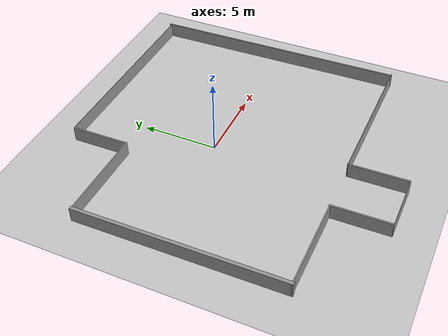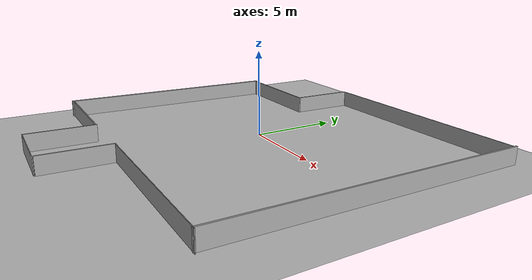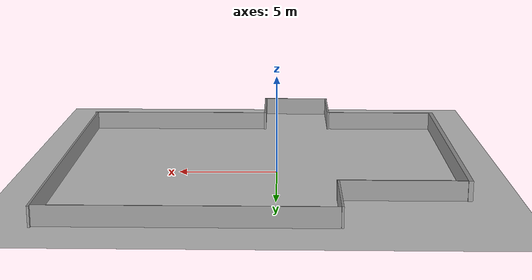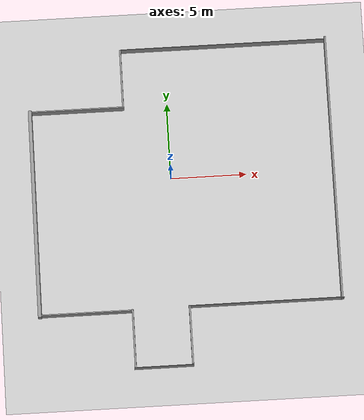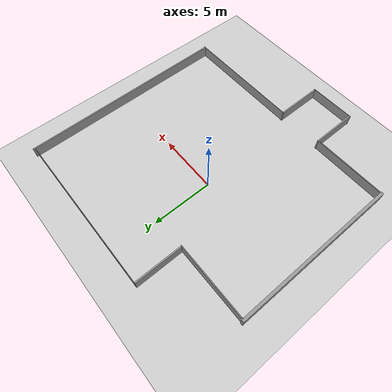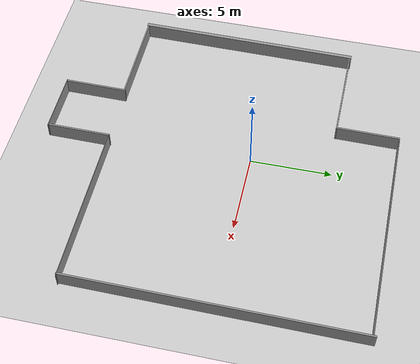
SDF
<sdf version="1.7">
 <world name="default">
  <light name="sun" type="directional">
   <pose>0 0 10 0 -0 0</pose>
   <diffuse>0.8 0.8 0.8 1</diffuse>
   <specular>0.2 0.2 0.2 1</specular>
   <attenuation>
    <range>1000</range>
    <constant>0.9</constant>
    <linear>0.01</linear>
    <quadratic>0.001</quadratic>
   </attenuation>
   <direction>-0.5 0.1 -0.9</direction>
   <spot><inner_angle>0</inner_angle><outer_angle>0</outer_angle><falloff>0</falloff></spot>
  </light>
  <model name="ground_plane">
   <static>1</static>
   <link name="link">
    <collision name="collision">
     <geometry><plane><normal>0 0 1</normal><size>100 100</size></plane></geometry>
     <surface>
      <contact><collide_bitmask>65535</collide_bitmask></contact>
      <friction><ode><mu>100</mu><mu2>50</mu2></ode></friction>
     </surface>
    </collision>
    <visual name="visual">
     <cast_shadows>0</cast_shadows>
     <geometry><plane><normal>0 0 1</normal><size>100 100</size></plane></geometry>
     <material>
      <script><uri>file://media/materials/scripts/gazebo.material</uri><name>Gazebo/Grey</name></script>
     </material>
    </visual>
   </link>
  </model>
  <gravity>0 0 -9.8</gravity>
  <magnetic_field>6e-06 2.3e-05 -4.2e-05</magnetic_field>
  <atmosphere type="adiabatic"/>
  <physics type="ode">
   <max_step_size>0.001</max_step_size>
   <real_time_factor>1</real_time_factor>
   <real_time_update_rate>1000</real_time_update_rate>
  </physics>
  <scene><ambient>0.4 0.4 0.4 1</ambient><background>0.7 0.7 0.7 1</background><shadows>1</shadows></scene>
  <spherical_coordinates>
   <surface_model>EARTH_WGS84</surface_model>
   <latitude_deg>0</latitude_deg>
   <longitude_deg>0</longitude_deg>
   <elevation>0</elevation>
   <heading_deg>0</heading_deg>
  </spherical_coordinates>
  <model name="wallstofollow">
   <link name="link_0">
    <inertial>
     <mass>0.444011</mass>
     <inertia><ixx>0.0370411</ixx><ixy>0</ixy><ixz>0</ixz><iyy>6.8047</iyy><iyz>0</iyz><izz>6.76774</izz></inertia>
    </inertial>
    <pose>7.41625 4.12053 0 0 -0 0</pose>
    <visual name="visual">
     <geometry><box><size>13.5243 0.032968 1</size></box></geometry>
     <material>
      <lighting>1</lighting>
      <script><uri>file://media/materials/scripts/gazebo.material</uri><name>Gazebo/Grey</name></script>
      <shader type="pixel"/>
     </material>
    </visual>
    <collision name="collision">
     <geometry><box><size>13.5243 0.032968 1</size></box></geometry>
     <surface>
      <friction>
       <ode><mu>1</mu><mu2>1</mu2><fdir1>0 0 0</fdir1><slip1>0</slip1><slip2>0</slip2></ode>
       <torsional>
        <coefficient>1</coefficient>
        <patch_radius>0</patch_radius>
        <surface_radius>0</surface_radius>
        <use_patch_radius>1</use_patch_radius>
        <ode><slip>0</slip></ode>
       </torsional>
      </friction>
      <bounce><restitution_coefficient>0</restitution_coefficient><threshold>1e+06</threshold></bounce>
      <contact>
       <collide_without_contact>0</collide_without_contact>
       <collide_without_contact_bitmask>1</collide_without_contact_bitmask>
       <collide_bitmask>1</collide_bitmask>
       <ode>
        <soft_cfm>0</soft_cfm>
        <soft_erp>0.2</soft_erp>
        <kp>1e+13</kp>
        <kd>1</kd>
        <max_vel>0.01</max_vel>
        <min_depth>0</min_depth>
       </ode>
       <bullet>
        <split_impulse>1</split_impulse>
        <split_impulse_penetration_threshold>-0.01</split_impulse_penetration_threshold>
        <soft_cfm>0</soft_cfm>
        <soft_erp>0.2</soft_erp>
        <kp>1e+13</kp>
        <kd>1</kd>
       </bullet>
      </contact>
     </surface>
    </collision>
   </link>
   <link name="link_0_clone">
    <inertial>
     <mass>0.334724</mass>
     <inertia><ixx>0.027924</ixx><ixy>0</ixy><ixz>0</ixz><iyy>2.92739</iyy><iyz>0</iyz><izz>2.89952</izz></inertia>
    </inertial>
    <pose>9.28378 -13.2489 -0.000917 6.8e-05 2e-06 0.000672</pose>
    <visual name="visual">
     <geometry><box><size>10.1955 0.032968 1</size></box></geometry>
     <material>
      <lighting>1</lighting>
      <script><uri>file://media/materials/scripts/gazebo.material</uri><name>Gazebo/Grey</name></script>
      <shader type="pixel"/>
     </material>
    </visual>
    <collision name="collision">
     <geometry><box><size>10.1955 0.032968 1</size></box></geometry>
     <surface>
      <friction>
       <ode><mu>1</mu><mu2>1</mu2><fdir1>0 0 0</fdir1><slip1>0</slip1><slip2>0</slip2></ode>
       <torsional>
        <coefficient>1</coefficient>
        <patch_radius>0</patch_radius>
        <surface_radius>0</surface_radius>
        <use_patch_radius>1</use_patch_radius>
        <ode><slip>0</slip></ode>
       </torsional>
      </friction>
      <bounce><restitution_coefficient>0</restitution_coefficient><threshold>1e+06</threshold></bounce>
      <contact>
       <collide_without_contact>0</collide_without_contact>
       <collide_without_contact_bitmask>1</collide_without_contact_bitmask>
       <collide_bitmask>1</collide_bitmask>
       <ode>
        <soft_cfm>0</soft_cfm>
        <soft_erp>0.2</soft_erp>
        <kp>1e+13</kp>
        <kd>1</kd>
        <max_vel>0.01</max_vel>
        <min_depth>0</min_depth>
       </ode>
       <bullet>
        <split_impulse>1</split_impulse>
        <split_impulse_penetration_threshold>-0.01</split_impulse_penetration_threshold>
        <soft_cfm>0</soft_cfm>
        <soft_erp>0.2</soft_erp>
        <kp>1e+13</kp>
        <kd>1</kd>
       </bullet>
      </contact>
     </surface>
    </collision>
   </link>
   <link name="link_0_clone_clone">
    <inertial>
     <mass>0.12777</mass>
     <inertia>
      <ixx>0.0106591</ixx>
      <ixy>0</ixy>
      <ixz>0</ixz>
      <iyy>0.171915</iyy>
      <iyz>0</iyz>
      <izz>0.161279</izz>
     </inertia>
    </inertial>
    <pose>2.3691 -17.1253 -0.002084 0.000136 4e-06 0.001344</pose>
    <visual name="visual">
     <geometry><box><size>3.89179 0.032968 1</size></box></geometry>
     <material>
      <lighting>1</lighting>
      <script><uri>file://media/materials/scripts/gazebo.material</uri><name>Gazebo/Grey</name></script>
      <shader type="pixel"/>
     </material>
    </visual>
    <collision name="collision">
     <geometry><box><size>3.89179 0.032968 1</size></box></geometry>
     <surface>
      <friction>
       <ode><mu>1</mu><mu2>1</mu2><fdir1>0 0 0</fdir1><slip1>0</slip1><slip2>0</slip2></ode>
       <torsional>
        <coefficient>1</coefficient>
        <patch_radius>0</patch_radius>
        <surface_radius>0</surface_radius>
        <use_patch_radius>1</use_patch_radius>
        <ode><slip>0</slip></ode>
       </torsional>
      </friction>
      <bounce><restitution_coefficient>0</restitution_coefficient><threshold>1e+06</threshold></bounce>
      <contact>
       <collide_without_contact>0</collide_without_contact>
       <collide_without_contact_bitmask>1</collide_without_contact_bitmask>
       <collide_bitmask>1</collide_bitmask>
       <ode>
        <soft_cfm>0</soft_cfm>
        <soft_erp>0.2</soft_erp>
        <kp>1e+13</kp>
        <kd>1</kd>
        <max_vel>0.01</max_vel>
        <min_depth>0</min_depth>
       </ode>
       <bullet>
        <split_impulse>1</split_impulse>
        <split_impulse_penetration_threshold>-0.01</split_impulse_penetration_threshold>
        <soft_cfm>0</soft_cfm>
        <soft_erp>0.2</soft_erp>
        <kp>1e+13</kp>
        <kd>1</kd>
       </bullet>
      </contact>
     </surface>
    </collision>
   </link>
   <link name="link_1">
    <inertial>
     <mass>0.399221</mass>
     <inertia>
      <ixx>0.526535</ixx>
      <ixy>0</ixy>
      <ixz>0</ixz>
      <iyy>0.0336262</iyy>
      <iyz>0</iyz>
      <izz>0.493624</izz>
     </inertia>
    </inertial>
    <pose>0.592736 2.19178 0 0 -0 0</pose>
    <visual name="visual">
     <geometry><box><size>0.103695 3.85057 1</size></box></geometry>
     <material>
      <lighting>1</lighting>
      <script><uri>file://media/materials/scripts/gazebo.material</uri><name>Gazebo/Grey</name></script>
      <shader type="pixel"/>
     </material>
    </visual>
    <collision name="collision">
     <geometry><box><size>0.103695 3.85057 1</size></box></geometry>
     <surface>
      <friction>
       <ode><mu>1</mu><mu2>1</mu2><fdir1>0 0 0</fdir1><slip1>0</slip1><slip2>0</slip2></ode>
       <torsional>
        <coefficient>1</coefficient>
        <patch_radius>0</patch_radius>
        <surface_radius>0</surface_radius>
        <use_patch_radius>1</use_patch_radius>
        <ode><slip>0</slip></ode>
       </torsional>
      </friction>
      <bounce><restitution_coefficient>0</restitution_coefficient><threshold>1e+06</threshold></bounce>
      <contact>
       <collide_without_contact>0</collide_without_contact>
       <collide_without_contact_bitmask>1</collide_without_contact_bitmask>
       <collide_bitmask>1</collide_bitmask>
       <ode>
        <soft_cfm>0</soft_cfm>
        <soft_erp>0.2</soft_erp>
        <kp>1e+13</kp>
        <kd>1</kd>
        <max_vel>0.01</max_vel>
        <min_depth>0</min_depth>
       </ode>
       <bullet>
        <split_impulse>1</split_impulse>
        <split_impulse_penetration_threshold>-0.01</split_impulse_penetration_threshold>
        <soft_cfm>0</soft_cfm>
        <soft_erp>0.2</soft_erp>
        <kp>1e+13</kp>
        <kd>1</kd>
       </bullet>
      </contact>
     </surface>
    </collision>
   </link>
   <link name="link_1_clone">
    <inertial>
     <mass>0.399221</mass>
     <inertia>
      <ixx>0.526535</ixx>
      <ixy>0</ixy>
      <ixz>0</ixz>
      <iyy>0.0336262</iyy>
      <iyz>0</iyz>
      <izz>0.493624</izz>
     </inertia>
    </inertial>
    <pose>0.499042 -15.2052 -0.001033 6.8e-05 2e-06 0.000672</pose>
    <visual name="visual">
     <geometry><box><size>0.103695 3.85057 1</size></box></geometry>
     <material>
      <lighting>1</lighting>
      <script><uri>file://media/materials/scripts/gazebo.material</uri><name>Gazebo/Grey</name></script>
      <shader type="pixel"><normal_map>__default__</normal_map></shader>
     </material>
    </visual>
    <collision name="collision">
     <geometry><box><size>0.103695 3.85057 1</size></box></geometry>
     <surface>
      <friction>
       <ode><mu>1</mu><mu2>1</mu2><fdir1>0 0 0</fdir1><slip1>0</slip1><slip2>0</slip2></ode>
       <torsional>
        <coefficient>1</coefficient>
        <patch_radius>0</patch_radius>
        <surface_radius>0</surface_radius>
        <use_patch_radius>1</use_patch_radius>
        <ode><slip>0</slip></ode>
       </torsional>
      </friction>
      <bounce><restitution_coefficient>0</restitution_coefficient><threshold>1e+06</threshold></bounce>
      <contact>
       <collide_without_contact>0</collide_without_contact>
       <collide_without_contact_bitmask>1</collide_without_contact_bitmask>
       <collide_bitmask>1</collide_bitmask>
       <ode>
        <soft_cfm>0</soft_cfm>
        <soft_erp>0.2</soft_erp>
        <kp>1e+13</kp>
        <kd>1</kd>
        <max_vel>0.01</max_vel>
        <min_depth>0</min_depth>
       </ode>
       <bullet>
        <split_impulse>1</split_impulse>
        <split_impulse_penetration_threshold>-0.01</split_impulse_penetration_threshold>
        <soft_cfm>0</soft_cfm>
        <soft_erp>0.2</soft_erp>
        <kp>1e+13</kp>
        <kd>1</kd>
       </bullet>
      </contact>
     </surface>
    </collision>
   </link>
   <link name="link_1_clone_clone">
    <inertial>
     <mass>0.399221</mass>
     <inertia>
      <ixx>0.526535</ixx>
      <ixy>0</ixy>
      <ixz>0</ixz>
      <iyy>0.0336262</iyy>
      <iyz>0</iyz>
      <izz>0.493624</izz>
     </inertia>
    </inertial>
    <pose>4.24349 -15.1434 -0.002069 0.000136 4e-06 0.001344</pose>
    <visual name="visual">
     <geometry><box><size>0.103695 3.85057 1</size></box></geometry>
     <material>
      <lighting>1</lighting>
      <script><uri>file://media/materials/scripts/gazebo.material</uri><name>Gazebo/Grey</name></script>
      <shader type="pixel"><normal_map>__default__</normal_map></shader>
     </material>
    </visual>
    <collision name="collision">
     <geometry><box><size>0.103695 3.85057 1</size></box></geometry>
     <surface>
      <friction>
       <ode><mu>1</mu><mu2>1</mu2><fdir1>0 0 0</fdir1><slip1>0</slip1><slip2>0</slip2></ode>
       <torsional>
        <coefficient>1</coefficient>
        <patch_radius>0</patch_radius>
        <surface_radius>0</surface_radius>
        <use_patch_radius>1</use_patch_radius>
        <ode><slip>0</slip></ode>
       </torsional>
      </friction>
      <bounce><restitution_coefficient>0</restitution_coefficient><threshold>1e+06</threshold></bounce>
      <contact>
       <collide_without_contact>0</collide_without_contact>
       <collide_without_contact_bitmask>1</collide_without_contact_bitmask>
       <collide_bitmask>1</collide_bitmask>
       <ode>
        <soft_cfm>0</soft_cfm>
        <soft_erp>0.2</soft_erp>
        <kp>1e+13</kp>
        <kd>1</kd>
        <max_vel>0.01</max_vel>
        <min_depth>0</min_depth>
       </ode>
       <bullet>
        <split_impulse>1</split_impulse>
        <split_impulse_penetration_threshold>-0.01</split_impulse_penetration_threshold>
        <soft_cfm>0</soft_cfm>
        <soft_erp>0.2</soft_erp>
        <kp>1e+13</kp>
        <kd>1</kd>
       </bullet>
      </contact>
     </surface>
    </collision>
   </link>
   <link name="link_1_clone_clone_0">
    <inertial>
     <mass>1.82239</mass>
     <inertia><ixx>47.0729</ixx><ixy>0</ixy><ixz>0</ixz><iyy>0.153499</iyy><iyz>0</iyz><izz>46.9227</izz></inertia>
    </inertial>
    <pose>14.2286 -4.49665 -0.001337 0.000136 4e-06 0.001344</pose>
    <visual name="visual">
     <geometry><box><size>0.103695 17.5774 1</size></box></geometry>
     <material>
      <lighting>1</lighting>
      <script><uri>file://media/materials/scripts/gazebo.material</uri><name>Gazebo/Grey</name></script>
      <shader type="pixel"><normal_map>__default__</normal_map></shader>
     </material>
    </visual>
    <collision name="collision">
     <geometry><box><size>0.103695 17.5774 1</size></box></geometry>
     <surface>
      <friction>
       <ode><mu>1</mu><mu2>1</mu2><fdir1>0 0 0</fdir1><slip1>0</slip1><slip2>0</slip2></ode>
       <torsional>
        <coefficient>1</coefficient>
        <patch_radius>0</patch_radius>
        <surface_radius>0</surface_radius>
        <use_patch_radius>1</use_patch_radius>
        <ode><slip>0</slip></ode>
       </torsional>
      </friction>
      <bounce><restitution_coefficient>0</restitution_coefficient><threshold>1e+06</threshold></bounce>
      <contact>
       <collide_without_contact>0</collide_without_contact>
       <collide_without_contact_bitmask>1</collide_without_contact_bitmask>
       <collide_bitmask>1</collide_bitmask>
       <ode>
        <soft_cfm>0</soft_cfm>
        <soft_erp>0.2</soft_erp>
        <kp>1e+13</kp>
        <kd>1</kd>
        <max_vel>0.01</max_vel>
        <min_depth>0</min_depth>
       </ode>
       <bullet>
        <split_impulse>1</split_impulse>
        <split_impulse_penetration_threshold>-0.01</split_impulse_penetration_threshold>
        <soft_cfm>0</soft_cfm>
        <soft_erp>0.2</soft_erp>
        <kp>1e+13</kp>
        <kd>1</kd>
       </bullet>
      </contact>
     </surface>
    </collision>
   </link>
   <link name="link_2">
    <inertial>
     <mass>0.453714</mass>
     <inertia>
      <ixx>0.0380127</ixx>
      <ixy>0</ixy>
      <ixz>0</ixz>
      <iyy>1.48776</iyy>
      <iyz>0</iyz>
      <izz>1.45015</izz>
     </inertia>
    </inertial>
    <pose>-2.4305 0.241799 -0 0 -0 0</pose>
    <visual name="visual">
     <geometry><box><size>6.19264 0.073297 1</size></box></geometry>
     <material>
      <lighting>1</lighting>
      <script><uri>file://media/materials/scripts/gazebo.material</uri><name>Gazebo/Grey</name></script>
      <shader type="pixel"/>
     </material>
    </visual>
    <collision name="collision">
     <geometry><box><size>6.19264 0.073297 1</size></box></geometry>
     <surface>
      <friction>
       <ode><mu>1</mu><mu2>1</mu2><fdir1>0 0 0</fdir1><slip1>0</slip1><slip2>0</slip2></ode>
       <torsional>
        <coefficient>1</coefficient>
        <patch_radius>0</patch_radius>
        <surface_radius>0</surface_radius>
        <use_patch_radius>1</use_patch_radius>
        <ode><slip>0</slip></ode>
       </torsional>
      </friction>
      <bounce><restitution_coefficient>0</restitution_coefficient><threshold>1e+06</threshold></bounce>
      <contact>
       <collide_without_contact>0</collide_without_contact>
       <collide_without_contact_bitmask>1</collide_without_contact_bitmask>
       <collide_bitmask>1</collide_bitmask>
       <ode>
        <soft_cfm>0</soft_cfm>
        <soft_erp>0.2</soft_erp>
        <kp>1e+13</kp>
        <kd>1</kd>
        <max_vel>0.01</max_vel>
        <min_depth>0</min_depth>
       </ode>
       <bullet>
        <split_impulse>1</split_impulse>
        <split_impulse_penetration_threshold>-0.01</split_impulse_penetration_threshold>
        <soft_cfm>0</soft_cfm>
        <soft_erp>0.2</soft_erp>
        <kp>1e+13</kp>
        <kd>1</kd>
       </bullet>
      </contact>
     </surface>
    </collision>
   </link>
   <link name="link_2_clone">
    <inertial>
     <mass>3.15637</mass>
     <inertia><ixx>50.2722</ixx><ixy>0</ixy><ixz>0</ixz><iyy>0.27682</iyy><iyz>0</iyz><izz>50.0229</izz></inertia>
    </inertial>
    <pose>-5.57849 -6.55414 0 0 -0 0</pose>
    <visual name="visual">
     <geometry><box><size>0.228969 13.7886 1</size></box></geometry>
     <material>
      <lighting>1</lighting>
      <script><uri>file://media/materials/scripts/gazebo.material</uri><name>Gazebo/Grey</name></script>
      <shader type="pixel"/>
     </material>
    </visual>
    <collision name="collision">
     <geometry><box><size>0.228969 13.7886 1</size></box></geometry>
     <surface>
      <friction>
       <ode><mu>1</mu><mu2>1</mu2><fdir1>0 0 0</fdir1><slip1>0</slip1><slip2>0</slip2></ode>
       <torsional>
        <coefficient>1</coefficient>
        <patch_radius>0</patch_radius>
        <surface_radius>0</surface_radius>
        <use_patch_radius>1</use_patch_radius>
        <ode><slip>0</slip></ode>
       </torsional>
      </friction>
      <bounce><restitution_coefficient>0</restitution_coefficient><threshold>1e+06</threshold></bounce>
      <contact>
       <collide_without_contact>0</collide_without_contact>
       <collide_without_contact_bitmask>1</collide_without_contact_bitmask>
       <collide_bitmask>1</collide_bitmask>
       <ode>
        <soft_cfm>0</soft_cfm>
        <soft_erp>0.2</soft_erp>
        <kp>1e+13</kp>
        <kd>1</kd>
        <max_vel>0.01</max_vel>
        <min_depth>0</min_depth>
       </ode>
       <bullet>
        <split_impulse>1</split_impulse>
        <split_impulse_penetration_threshold>-0.01</split_impulse_penetration_threshold>
        <soft_cfm>0</soft_cfm>
        <soft_erp>0.2</soft_erp>
        <kp>1e+13</kp>
        <kd>1</kd>
       </bullet>
      </contact>
     </surface>
    </collision>
   </link>
   <link name="link_2_clone_0">
    <inertial>
     <mass>0.453714</mass>
     <inertia>
      <ixx>0.0380127</ixx>
      <ixy>0</ixy>
      <ixz>0</ixz>
      <iyy>1.48776</iyy>
      <iyz>0</iyz>
      <izz>1.45015</izz>
     </inertia>
    </inertial>
    <pose>-2.59697 -13.3493 -0.000901 6.8e-05 2e-06 0.000672</pose>
    <visual name="visual">
     <geometry><box><size>6.19264 0.073297 1</size></box></geometry>
     <material>
      <lighting>1</lighting>
      <script><uri>file://media/materials/scripts/gazebo.material</uri><name>Gazebo/Grey</name></script>
      <shader type="pixel"/>
     </material>
    </visual>
    <collision name="collision">
     <geometry><box><size>6.19264 0.073297 1</size></box></geometry>
     <surface>
      <friction>
       <ode><mu>1</mu><mu2>1</mu2><fdir1>0 0 0</fdir1><slip1>0</slip1><slip2>0</slip2></ode>
       <torsional>
        <coefficient>1</coefficient>
        <patch_radius>0</patch_radius>
        <surface_radius>0</surface_radius>
        <use_patch_radius>1</use_patch_radius>
        <ode><slip>0</slip></ode>
       </torsional>
      </friction>
      <bounce><restitution_coefficient>0</restitution_coefficient><threshold>1e+06</threshold></bounce>
      <contact>
       <collide_without_contact>0</collide_without_contact>
       <collide_without_contact_bitmask>1</collide_without_contact_bitmask>
       <collide_bitmask>1</collide_bitmask>
       <ode>
        <soft_cfm>0</soft_cfm>
        <soft_erp>0.2</soft_erp>
        <kp>1e+13</kp>
        <kd>1</kd>
        <max_vel>0.01</max_vel>
        <min_depth>0</min_depth>
       </ode>
       <bullet>
        <split_impulse>1</split_impulse>
        <split_impulse_penetration_threshold>-0.01</split_impulse_penetration_threshold>
        <soft_cfm>0</soft_cfm>
        <soft_erp>0.2</soft_erp>
        <kp>1e+13</kp>
        <kd>1</kd>
       </bullet>
      </contact>
     </surface>
    </collision>
   </link>
   <static>0</static>
   <pose>-3.49802 4.55751 0.546964 -0.01136 0 0</pose>
  </model>
 </world>
</sdf>
